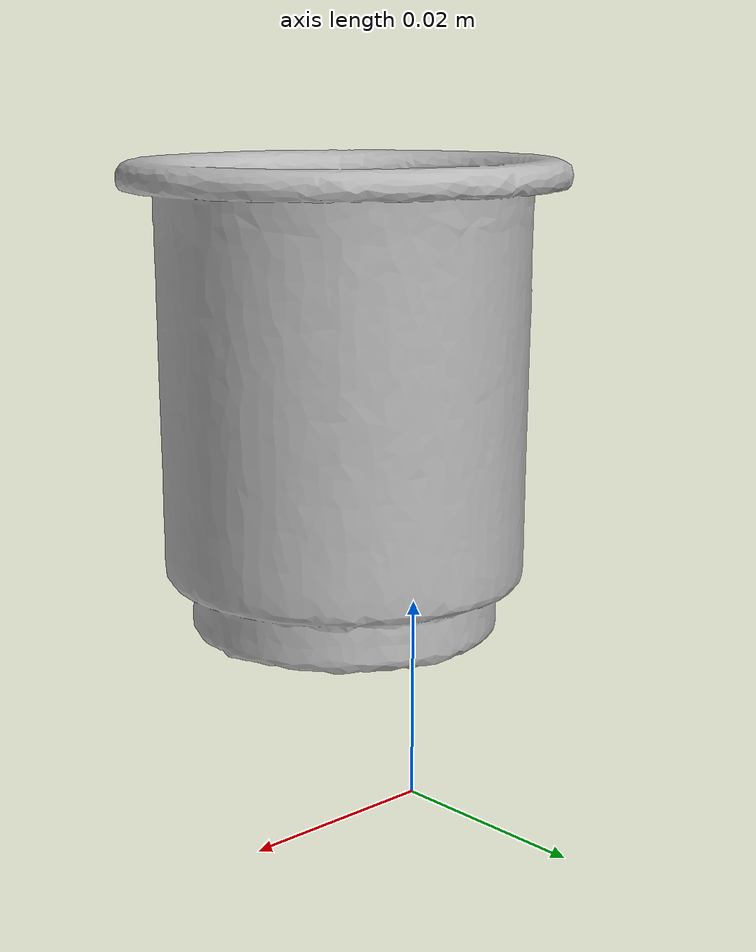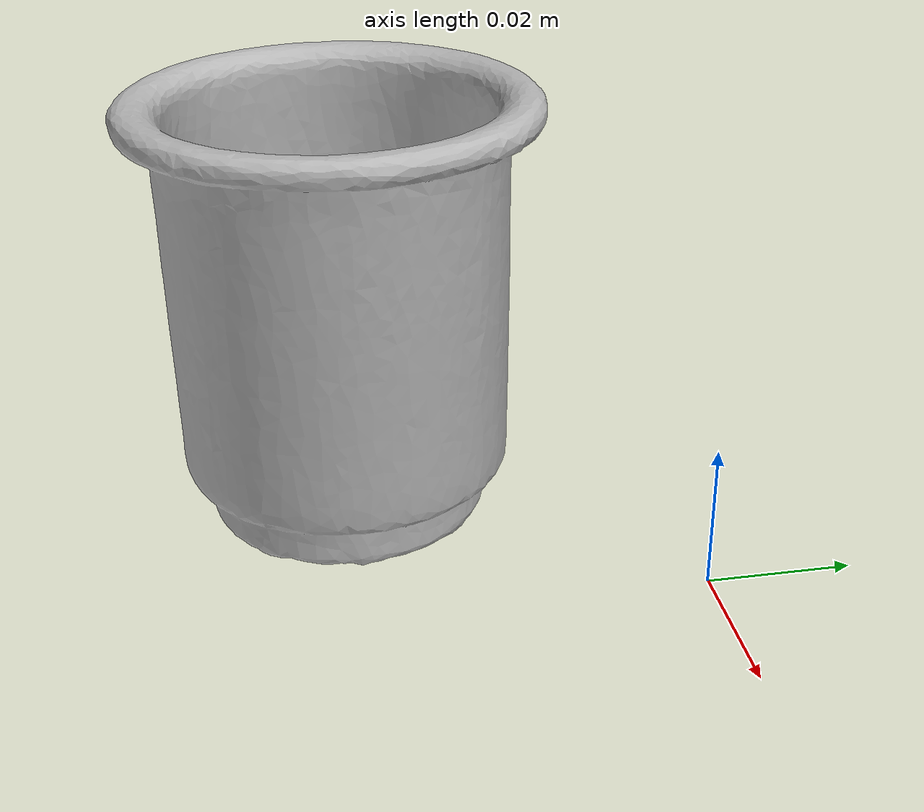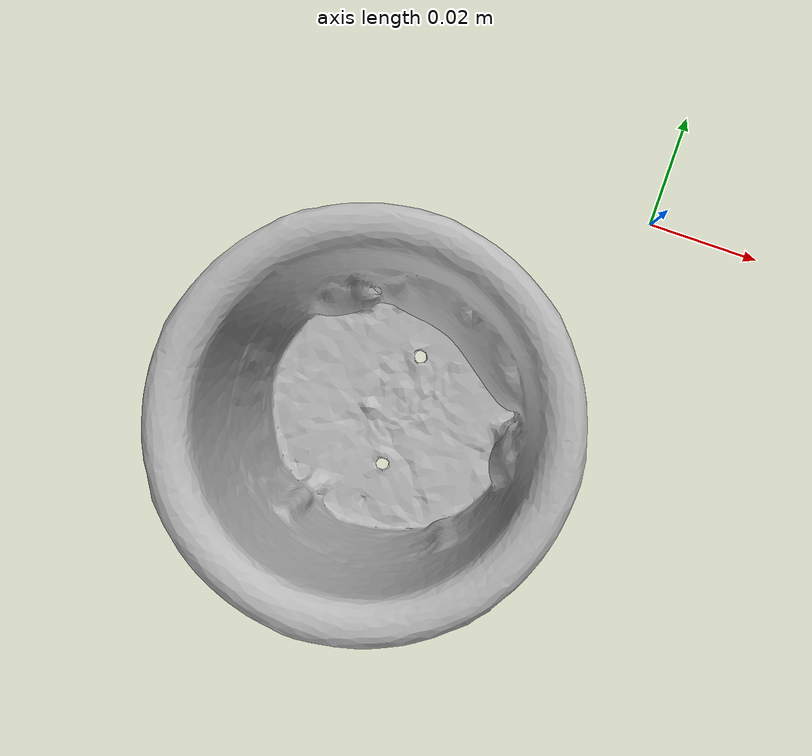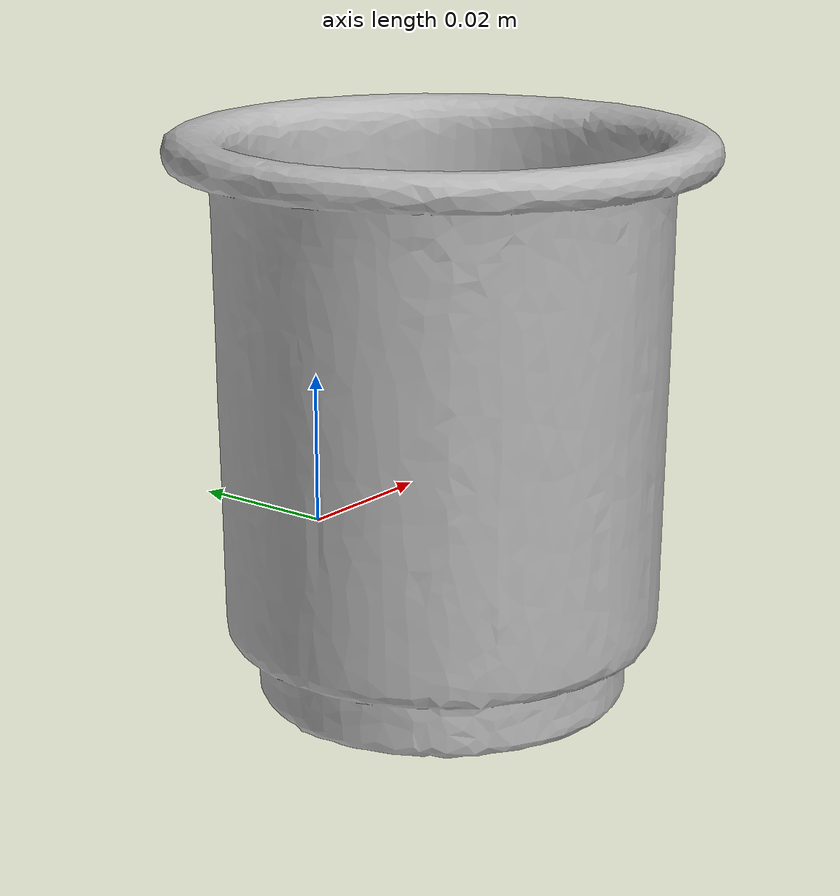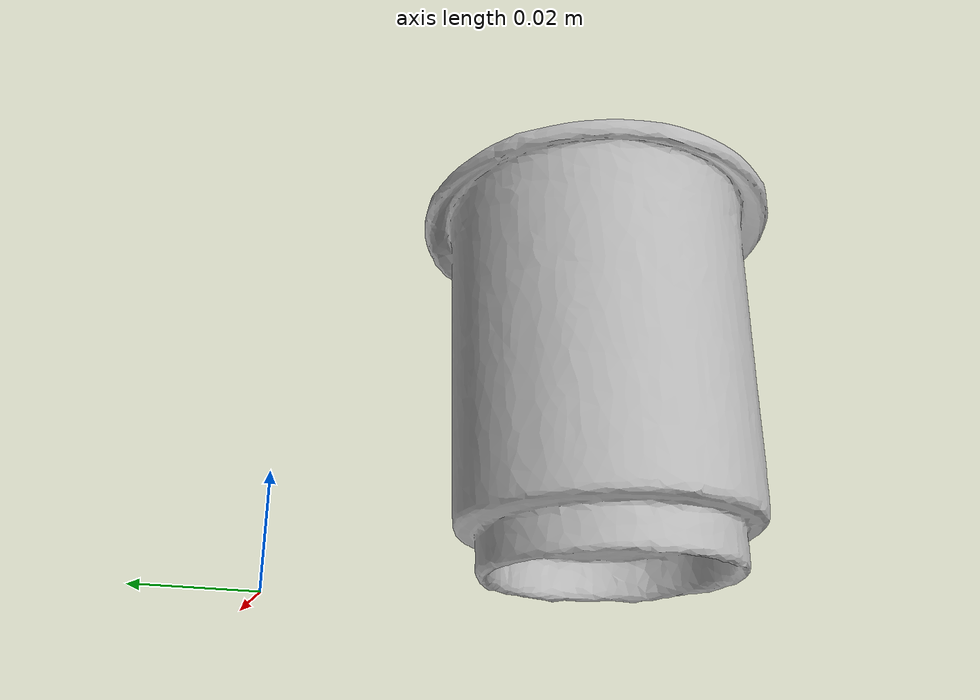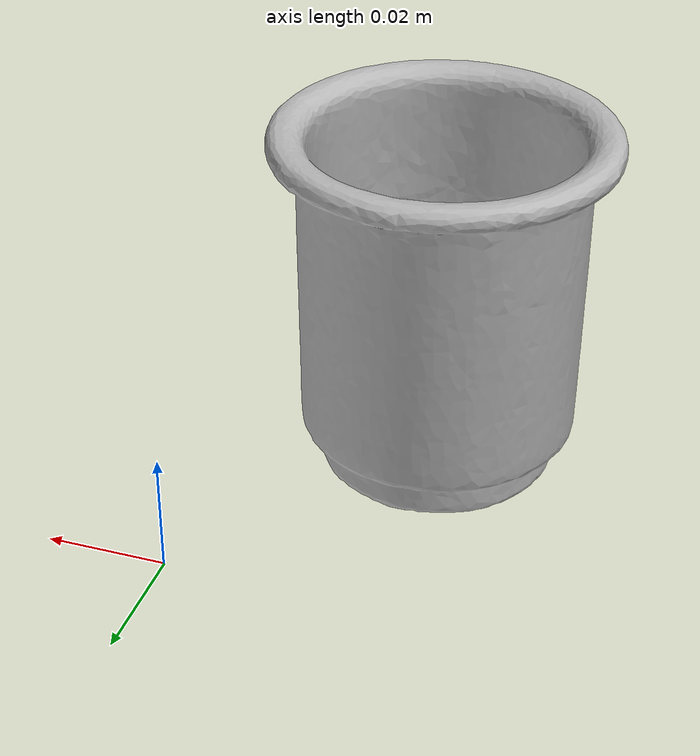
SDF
<?xml version='1.0'?>
<sdf version="1.4">
  <model name="a_cups">
    <static>false</static>
    <link name="link">
      <inertial>
        <pose>-0.030542434788324198 -0.04266839741228885 0.028457527482021325 2.8672624528800785 -0.016099482029763842 2.7127593760031345</pose>
        <mass>2.3348454346731825e-05</mass>
        <inertia>
          <ixx>1.2955274196391751e-08</ixx>
          <ixy>9.25752235643952e-26</ixy>
          <ixz>-4.663493827942212e-25</ixz>
          <iyy>1.2835382668906948e-08</iyy>
          <iyz>-1.6000124278317577e-24</iyz>
          <izz>1.0698688111398298e-08</izz>
        </inertia>
      </inertial>
      <collision name="collision">
        <geometry>
          <mesh>
            <!-- Use a downsampled mesh for collisions -->
            <uri>model://065-a_cups/google_16k/065-a_cups.obj</uri>
            </mesh>
        </geometry>
        <surface>
          <friction>
            <ode>
              <mu>0.9</mu>
              <mu2>0.9</mu2>
            </ode>
          </friction>
          <contact>
            <ode>
              <kp>1000000000000.0</kp>
              <kd>1</kd>
              <min_depth>0.0001</min_depth>
              <max_vel>0.01</max_vel>
            </ode>
          </contact>
          <bounce>
            <restitution_coefficient>0.1</restitution_coefficient>
            <threshold>1000.0</threshold>
          </bounce>
        </surface>
      </collision>
      <visual name="visual">
        <geometry>
          <mesh>
            <uri>model://065-a_cups/google_16k/065-a_cups.dae</uri>
            </mesh>
        </geometry>
      </visual>
    </link>
  </model>
</sdf>
